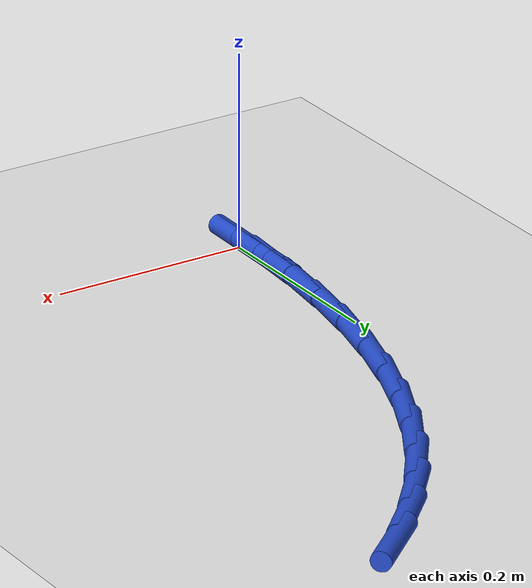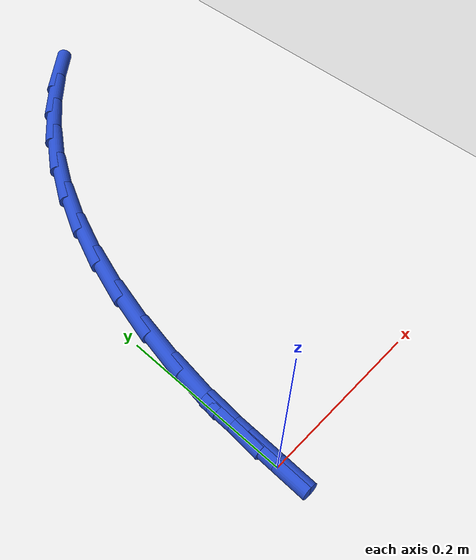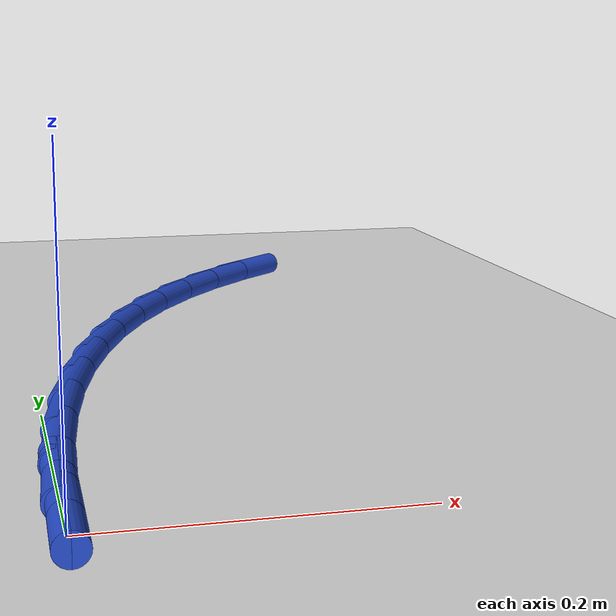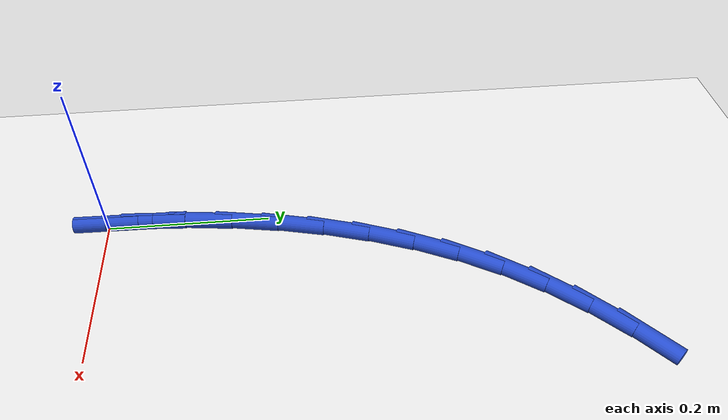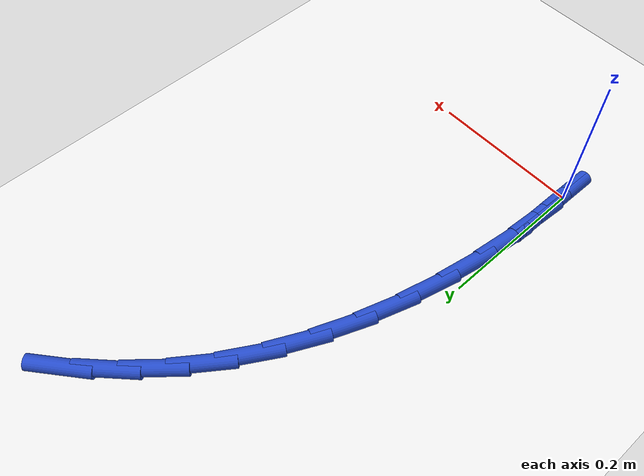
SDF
<sdf version="1.6">
 <world name="default">
  <model name="ground_plane">
   <static>1</static>
   <link name="link">
    <collision name="collision">
     <geometry><plane><normal>0 0 1</normal><size>100 100</size></plane></geometry>
     <surface><friction><ode><mu>100</mu><mu2>50</mu2></ode></friction></surface>
    </collision>
    <visual name="visual">
     <cast_shadows>0</cast_shadows>
     <geometry><plane><normal>0 0 1</normal><size>100 100</size></plane></geometry>
     <material>
      <script><uri>file://media/materials/scripts/gazebo.material</uri><name>Gazebo/WhiteGlow</name></script>
     </material>
    </visual>
   </link>
  </model>
  <model name="line">
   <link name="link_0">
    <pose>-3.2959746043559335e-17 -1.1102230246251565e-16 0.01 0 1.57 1.551846913487636</pose>
    <collision name="collision">
     <geometry><cylinder><radius>0.01</radius><length>0.08</length></cylinder></geometry>
    </collision>
    <visual name="visual">
     <material>
      <script><name>Gazebo/Blue</name><uri>file://media/materials/scripts/gazebo.material</uri></script>
     </material>
     <geometry><cylinder><radius>0.01</radius><length>0.08</length></cylinder></geometry>
    </visual>
   </link>
   <link name="link_1">
    <pose>0.0011042649817858251 0.058267387357299416 0.01 0 1.57 1.500012826196031</pose>
    <collision name="collision">
     <geometry><cylinder><radius>0.01</radius><length>0.08</length></cylinder></geometry>
    </collision>
    <visual name="visual">
     <material>
      <script><name>Gazebo/Blue</name><uri>file://media/materials/scripts/gazebo.material</uri></script>
     </material>
     <geometry><cylinder><radius>0.01</radius><length>0.08</length></cylinder></geometry>
    </visual>
   </link>
   <link name="link_2">
    <pose>0.005232381939346258 0.11649028174874665 0.01 0 1.57 1.4461539899667273</pose>
    <collision name="collision">
     <geometry><cylinder><radius>0.01</radius><length>0.08</length></cylinder></geometry>
    </collision>
    <visual name="visual">
     <material>
      <script><name>Gazebo/Blue</name><uri>file://media/materials/scripts/gazebo.material</uri></script>
     </material>
     <geometry><cylinder><radius>0.01</radius><length>0.08</length></cylinder></geometry>
    </visual>
   </link>
   <link name="link_3">
    <pose>0.012470081389832832 0.17425700707070726 0.01 0 1.57 1.3894501783453097</pose>
    <collision name="collision">
     <geometry><cylinder><radius>0.01</radius><length>0.08</length></cylinder></geometry>
    </collision>
    <visual name="visual">
     <material>
      <script><name>Gazebo/Blue</name><uri>file://media/materials/scripts/gazebo.material</uri></script>
     </material>
     <geometry><cylinder><radius>0.01</radius><length>0.08</length></cylinder></geometry>
    </visual>
   </link>
   <link name="link_4">
    <pose>0.022903093850397134 0.23115588721954713 0.01 0 1.57 1.329048653322271</pose>
    <collision name="collision">
     <geometry><cylinder><radius>0.01</radius><length>0.08</length></cylinder></geometry>
    </collision>
    <visual name="visual">
     <material>
      <script><name>Gazebo/Blue</name><uri>file://media/materials/scripts/gazebo.material</uri></script>
     </material>
     <geometry><cylinder><radius>0.01</radius><length>0.08</length></cylinder></geometry>
    </visual>
   </link>
   <link name="link_5">
    <pose>0.03661714983819071 0.2867752460916318 0.01 0 1.57 1.2640596927894332</pose>
    <collision name="collision">
     <geometry><cylinder><radius>0.01</radius><length>0.08</length></cylinder></geometry>
    </collision>
    <visual name="visual">
     <material>
      <script><name>Gazebo/Blue</name><uri>file://media/materials/scripts/gazebo.material</uri></script>
     </material>
     <geometry><cylinder><radius>0.01</radius><length>0.08</length></cylinder></geometry>
    </visual>
   </link>
   <link name="link_6">
    <pose>0.05369797987036516 0.34070340758332707 0.01 0 1.57 1.193567505007482</pose>
    <collision name="collision">
     <geometry><cylinder><radius>0.01</radius><length>0.08</length></cylinder></geometry>
    </collision>
    <visual name="visual">
     <material>
      <script><name>Gazebo/Blue</name><uri>file://media/materials/scripts/gazebo.material</uri></script>
     </material>
     <geometry><cylinder><radius>0.01</radius><length>0.08</length></cylinder></geometry>
    </visual>
   </link>
   <link name="link_7">
    <pose>0.07423131446407202 0.39252869559099857 0.01 0 1.57 1.1166648547187525</pose>
    <collision name="collision">
     <geometry><cylinder><radius>0.01</radius><length>0.08</length></cylinder></geometry>
    </collision>
    <visual name="visual">
     <material>
      <script><name>Gazebo/Blue</name><uri>file://media/materials/scripts/gazebo.material</uri></script>
     </material>
     <geometry><cylinder><radius>0.01</radius><length>0.08</length></cylinder></geometry>
    </visual>
   </link>
   <link name="link_8">
    <pose>0.09830288413646286 0.4418394340110119 0.01 0 1.57 1.0325223539359514</pose>
    <collision name="collision">
     <geometry><cylinder><radius>0.01</radius><length>0.08</length></cylinder></geometry>
    </collision>
    <visual name="visual">
     <material>
      <script><name>Gazebo/Blue</name><uri>file://media/materials/scripts/gazebo.material</uri></script>
     </material>
     <geometry><cylinder><radius>0.01</radius><length>0.08</length></cylinder></geometry>
    </visual>
   </link>
   <link name="link_9">
    <pose>0.12599841940468928 0.4882239467397331 0.01 0 1.57 0.9414347627689473</pose>
    <collision name="collision">
     <geometry><cylinder><radius>0.01</radius><length>0.08</length></cylinder></geometry>
    </collision>
    <visual name="visual">
     <material>
      <script><name>Gazebo/Blue</name><uri>file://media/materials/scripts/gazebo.material</uri></script>
     </material>
     <geometry><cylinder><radius>0.01</radius><length>0.08</length></cylinder></geometry>
    </visual>
   </link>
   <link name="link_10">
    <pose>0.15737847553905715 0.5313202885548377 0.01 0 1.57 0.8522552883983946</pose>
    <collision name="collision">
     <geometry><cylinder><radius>0.01</radius><length>0.08</length></cylinder></geometry>
    </collision>
    <visual name="visual">
     <material>
      <script><name>Gazebo/Blue</name><uri>file://media/materials/scripts/gazebo.material</uri></script>
     </material>
     <geometry><cylinder><radius>0.01</radius><length>0.08</length></cylinder></geometry>
    </visual>
   </link>
   <link name="link_11">
    <pose>0.19227269488254756 0.5712226568669685 0.01 0 1.57 0.7712133742896845</pose>
    <collision name="collision">
     <geometry><cylinder><radius>0.01</radius><length>0.08</length></cylinder></geometry>
    </collision>
    <visual name="visual">
     <material>
      <script><name>Gazebo/Blue</name><uri>file://media/materials/scripts/gazebo.material</uri></script>
     </material>
     <geometry><cylinder><radius>0.01</radius><length>0.08</length></cylinder></geometry>
    </visual>
   </link>
   <link name="link_12">
    <pose>0.23038663209781535 0.6082703704053479 0.01 0 1.57 0.6995562843396946</pose>
    <collision name="collision">
     <geometry><cylinder><radius>0.01</radius><length>0.08</length></cylinder></geometry>
    </collision>
    <visual name="visual">
     <material>
      <script><name>Gazebo/Blue</name><uri>file://media/materials/scripts/gazebo.material</uri></script>
     </material>
     <geometry><cylinder><radius>0.01</radius><length>0.08</length></cylinder></geometry>
    </visual>
   </link>
   <link name="link_120">
    <pose>-3.642919299551295e-17 9.71445146547012e-17 0.01 0 1.57 1.552198320345907</pose>
    <collision name="collision">
     <geometry><cylinder><radius>0.01</radius><length>0.08</length></cylinder></geometry>
    </collision>
    <visual name="visual">
     <material>
      <script><name>Gazebo/Blue</name><uri>file://media/materials/scripts/gazebo.material</uri></script>
     </material>
     <geometry><cylinder><radius>0.01</radius><length>0.08</length></cylinder></geometry>
    </visual>
   </link>
   <link name="link_121">
    <pose>0.0010845193016856755 0.0583070159599436 0.01 0 1.57 1.5521983203459073</pose>
    <collision name="collision">
     <geometry><cylinder><radius>0.01</radius><length>0.08</length></cylinder></geometry>
    </collision>
    <visual name="visual">
     <material>
      <script><name>Gazebo/Blue</name><uri>file://media/materials/scripts/gazebo.material</uri></script>
     </material>
     <geometry><cylinder><radius>0.01</radius><length>0.08</length></cylinder></geometry>
    </visual>
   </link>
  </model>
 </world>
</sdf>
